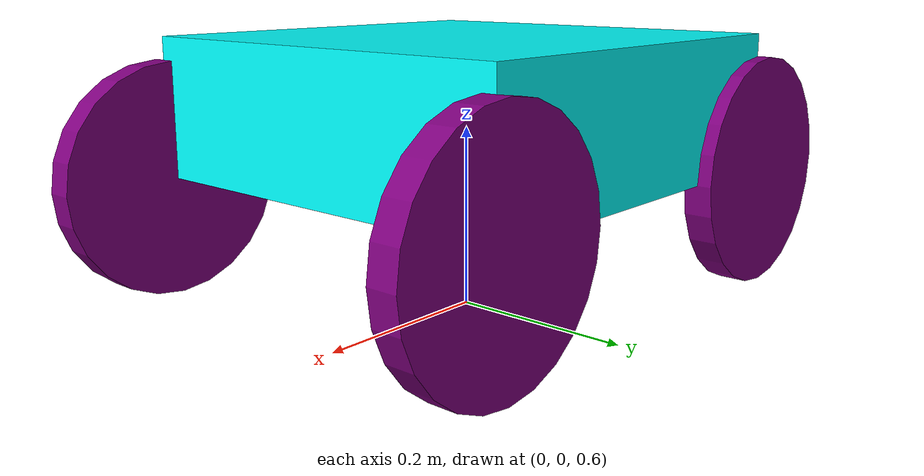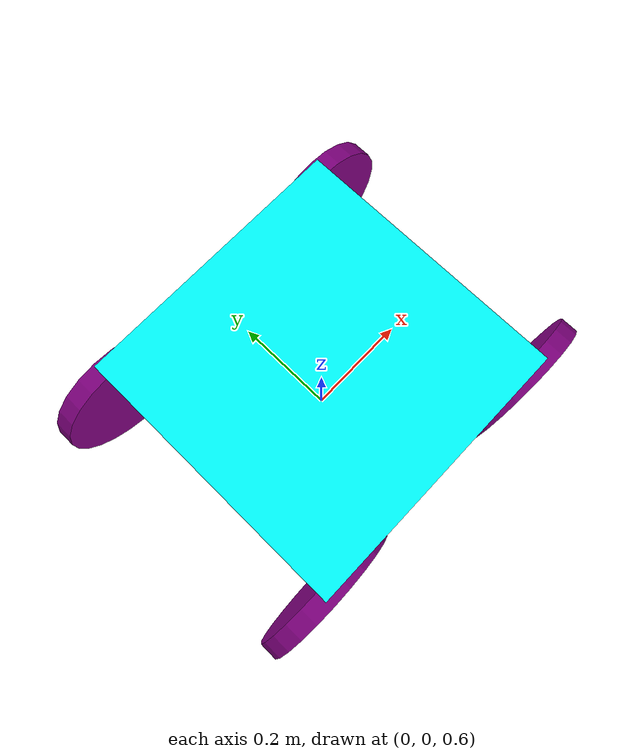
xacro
<?xml version="1.0"?>
<robot xmlns:xacro="http://www.ros.org/wiki/xacro" >

    <material name="white">
        <color rgba="1 1 1 1" />
    </material>

    <material name="orange">
        <color rgba="1 0.3 0.1 1"/>
    </material>

    <material name="blue">
        <color rgba="0.2 0.2 1 1"/>
    </material>

    <material name="black">
        <color rgba="0 0 0 1"/>
    </material>

    <material name="red">
        <color rgba="1 0 0 1"/>
    </material>

    <material name="green">
        <color rgba="0 1 0 1"/>
    </material>

    <material name="yellow">
        <color rgba="1 1 0 1"/>
    </material>

    <material name="purple">
        <color rgba="0.5 0 0.5 1"/>
    </material>

    <material name="cyan">
        <color rgba="0 1 1 1"/>
    </material>

    <material name="gray">
        <color rgba="0.5 0.5 0.5 1"/>
    </material>

    <!-- BASE LINK -->

    <link name="base_link"/>

    <joint name="chassis_joint" type="fixed">
        <parent link="base_link"/>
        <child link="chassis"/>
        <origin xyz="0 0 0.75" rpy="0 0 0"/>
    </joint>

    <link name="chassis">
        <visual>
            <origin xyz="0 0 0.075" rpy="0 0 0"/>
            <geometry>
                <box size="0.452 0.452 0.15"/>
            </geometry>
            <material name="cyan"/>
        </visual>
        <collision>
            <origin xyz="0 0 0.075" rpy="0 0 0"/>
            <geometry>
                <box size="0.452 0.452 0.15"/>
            </geometry>
        </collision>
        <xacro:inertial_box mass="0.1" x="0.46" y="0.46" z="0.15">
            <origin xyz="0 0 0.075" rpy="0 0 0"/>
        </xacro:inertial_box>
    </link>
    <gazebo reference="chassis">
        <material>Gazebo/cyan</material>
    </gazebo>

    <!-- BASE_FOOTPRINT LINK -->
    <joint name="base_footprint_joint" type="fixed">
        <parent link="base_link"/>
        <child link="base_footprint"/>
        <origin xyz="0 0 0" rpy="0 0 0"/>
    </joint>

    <link name="base_footprint">
    </link>

    <!-- LEFT FRONT WHEEL -->
    <joint name="left_wheel_joint" type="continuous">
        <parent link="chassis"/>
        <child link="left_wheel"/>
        <origin xyz="0.226 0.226 0" rpy="-${pi/2} 0 0"/>
        <axis xyz="0 0 1"/>
        <dynamics damping="0.5" friction="0.8"/>
    </joint>

    <link name="left_wheel">
        <visual>
            <geometry>
                <cylinder length="0.03" radius="0.125" />
            </geometry>
            <material name="purple"/>
        </visual>
        <collision>
            <geometry>
                <cylinder length="0.03" radius="0.125" />
            </geometry>
        </collision>
        <xacro:inertial_cylinder mass="0.1" length="0.03" radius="0.125">
            <origin xyz="0 0 0" rpy="0 0 0"/>
        </xacro:inertial_cylinder>
    </link>

    <gazebo reference="left_wheel">
        <material>Gazebo/purple</material>
        <mu1>0.8</mu1>
        <mu2>0.6</mu2>
        <plugin name="wheel_surface" filename="libgazebo_ros_surface_plugin.so">
            <rolling_resistance value="0.02"/>
            <friction value="0.9"/>
        </plugin>
    </gazebo>

    <!-- LEFT REAR WHEEL -->
    <joint name="left_wheel1_joint" type="continuous">
        <parent link="chassis"/>
        <child link="left_wheel1"/>
        <origin xyz="0.226 -0.226 0" rpy="-${pi/2} 0 0"/>
        <axis xyz="0 0 1"/>
        <dynamics damping="0.3" friction="0.8"/>
    </joint>

    <link name="left_wheel1">
        <visual>
            <geometry>2
                <cylinder length="0.03" radius="0.125" />
            </geometry>
            <material name="purple"/>
        </visual>
        <collision>
            <geometry>
                <cylinder length="0.03" radius="0.125" />
            </geometry>
        </collision>
        <xacro:inertial_cylinder mass="0.1" length="0.03" radius="0.125">
            <origin xyz="0 0 0" rpy="0 0 0"/>
        </xacro:inertial_cylinder>
    </link>

    <gazebo reference="left_wheel1">
        <material>Gazebo/purple</material>
        <mu1>0.8</mu1>
        <mu2>0.6</mu2>
        <plugin name="wheel_surface" filename="libgazebo_ros_surface_plugin.so">
            <rolling_resistance value="0.02"/>
            <friction value="0.9"/>
        </plugin>
    </gazebo>

    <!-- RIGHT FRONT WHEEL -->
    <joint name="right_wheel_joint" type="continuous">
        <parent link="chassis"/>
        <child link="right_wheel"/>
        <origin xyz="-0.226 0.226 0" rpy="${pi/2} 0 0"/>
        <axis xyz="0 0 -1"/>
        <dynamics damping="0.5" friction="0.8"/>
    </joint>

    <link name="right_wheel">
        <visual>
            <geometry>
                <cylinder length="0.03" radius="0.125" />
            </geometry>
            <material name="purple"/>
        </visual>
        <collision>
            <geometry>
                <cylinder length="0.03" radius="0.125" />
            </geometry>
        </collision>
        <xacro:inertial_cylinder mass="0.1" length="0.03" radius="0.125">
            <origin xyz="0 0 0" rpy="0 0 0"/>
        </xacro:inertial_cylinder>
    </link>

    <gazebo reference="right_wheel">
        <material>Gazebo/red</material>
        <mu1>0.8</mu1>
        <mu2>0.6</mu2>
        <plugin name="wheel_surface" filename="libgazebo_ros_surface_plugin.so">
            <rolling_resistance value="0.02"/>
            <friction value="0.9"/>
        </plugin>
    </gazebo>

    <!-- RIGHT REAR WHEEL -->
    <joint name="right_wheel1_joint" type="continuous">
        <parent link="chassis"/>
        <child link="right_wheel1"/>
        <origin xyz="-0.226 -0.226 0" rpy="${pi/2} 0 0"/>
        <axis xyz="0 0 -1"/>
        <dynamics damping="0.5" friction="0.8"/>
    </joint>

    <link name="right_wheel1">
        <visual>
            <geometry>
                <cylinder length="0.03" radius="0.125" />
            </geometry>
            <material name="purple"/>
        </visual>
        <collision>
            <geometry>
                <cylinder length="0.03" radius="0.125" />
            </geometry>
        </collision>
        <xacro:inertial_cylinder mass="0.1" length="0.03" radius="0.125">
            <origin xyz="0 0 0" rpy="0 0 0"/>
        </xacro:inertial_cylinder>
    </link>

    <gazebo reference="right_wheel1">
        <material>Gazebo/purple</material>
        <mu1>0.8</mu1>
        <mu2>0.6</mu2>
        <plugin name="wheel_surface" filename="libgazebo_ros_surface_plugin.so">
            <rolling_resistance value="0.02"/>
            <friction value="0.9"/>
        </plugin>
    </gazebo>

    <!-- GRIPPER -->

</robot>
